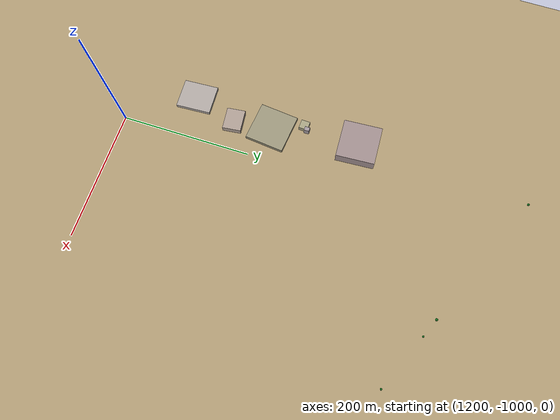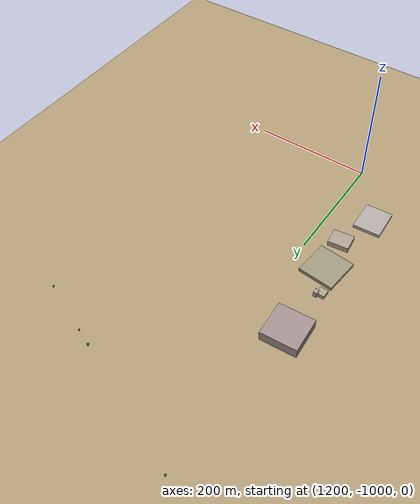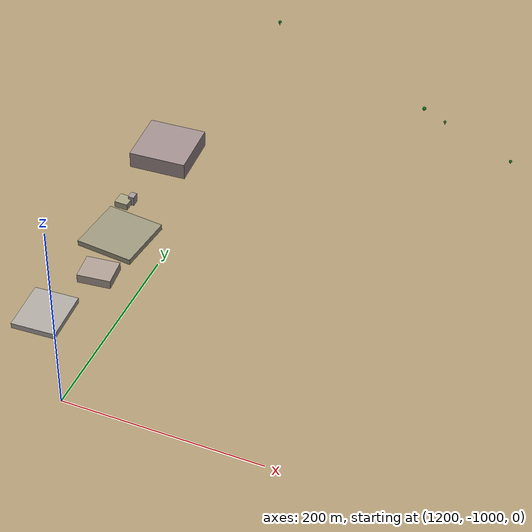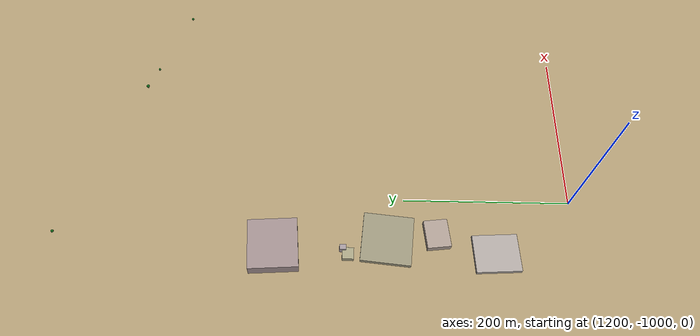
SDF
<sdf version="1.9">
 <world name="crossroad_world">
  <model name="ground_plane">
   <static>true</static>
   <pose>0 0 -0.05 0 0 0</pose>
   <link name="link">
    <collision name="collision">
     <geometry><plane><normal>0 0 1</normal><size>10000 10000</size></plane></geometry>
    </collision>
    <visual name="visual">
     <geometry><plane><normal>0 0 1</normal><size>15000 15000</size></plane></geometry>
     <material><ambient>0.68 0.60 0.45 1</ambient><diffuse>0.68 0.60 0.45 1</diffuse></material>
    </visual>
   </link>
  </model>
  <model name="tree_242">
   <static>true</static>
   <pose>1150.099 -379.705 0 0 0 0</pose>
   <link name="link">
    <visual name="trunk">
     <pose>0 0 1.429 0 0 0</pose>
     <geometry><cylinder><radius>0.125</radius><length>2.858</length></cylinder></geometry>
     <material><ambient>0.38 0.22 0.08 1</ambient><diffuse>0.38 0.22 0.08 1</diffuse></material>
    </visual>
    <visual name="canopy">
     <pose>0 0 3.961 0 0 0</pose>
     <geometry><sphere><radius>1.697</radius></sphere></geometry>
     <material><ambient>0.08 0.44 0.10 1</ambient><diffuse>0.08 0.44 0.10 1</diffuse></material>
    </visual>
    <collision name="col">
     <pose>0 0 1.429 0 0 0</pose>
     <geometry><cylinder><radius>0.125</radius><length>2.858</length></cylinder></geometry>
    </collision>
   </link>
  </model>
  <model name="tree_243">
   <static>true</static>
   <pose>1355.362 -468.014 0 0 0 0</pose>
   <link name="link">
    <visual name="trunk">
     <pose>0 0 1.652 0 0 0</pose>
     <geometry><cylinder><radius>0.145</radius><length>3.304</length></cylinder></geometry>
     <material><ambient>0.38 0.22 0.08 1</ambient><diffuse>0.38 0.22 0.08 1</diffuse></material>
    </visual>
    <visual name="canopy">
     <pose>0 0 4.579 0 0 0</pose>
     <geometry><sphere><radius>1.961</radius></sphere></geometry>
     <material><ambient>0.08 0.44 0.10 1</ambient><diffuse>0.08 0.44 0.10 1</diffuse></material>
    </visual>
    <collision name="col">
     <pose>0 0 1.652 0 0 0</pose>
     <geometry><cylinder><radius>0.145</radius><length>3.304</length></cylinder></geometry>
    </collision>
   </link>
  </model>
  <model name="tree_244">
   <static>true</static>
   <pose>1383.025 -479.852 0 0 0 0</pose>
   <link name="link">
    <visual name="trunk">
     <pose>0 0 1.204 0 0 0</pose>
     <geometry><cylinder><radius>0.105</radius><length>2.409</length></cylinder></geometry>
     <material><ambient>0.38 0.22 0.08 1</ambient><diffuse>0.38 0.22 0.08 1</diffuse></material>
    </visual>
    <visual name="canopy">
     <pose>0 0 3.338 0 0 0</pose>
     <geometry><sphere><radius>1.430</radius></sphere></geometry>
     <material><ambient>0.08 0.44 0.10 1</ambient><diffuse>0.08 0.44 0.10 1</diffuse></material>
    </visual>
    <collision name="col">
     <pose>0 0 1.204 0 0 0</pose>
     <geometry><cylinder><radius>0.105</radius><length>2.409</length></cylinder></geometry>
    </collision>
   </link>
  </model>
  <model name="tree_245">
   <static>true</static>
   <pose>1467.435 -516.276 0 0 0 0</pose>
   <link name="link">
    <visual name="trunk">
     <pose>0 0 1.291 0 0 0</pose>
     <geometry><cylinder><radius>0.113</radius><length>2.582</length></cylinder></geometry>
     <material><ambient>0.38 0.22 0.08 1</ambient><diffuse>0.38 0.22 0.08 1</diffuse></material>
    </visual>
    <visual name="canopy">
     <pose>0 0 3.579 0 0 0</pose>
     <geometry><sphere><radius>1.533</radius></sphere></geometry>
     <material><ambient>0.08 0.44 0.10 1</ambient><diffuse>0.08 0.44 0.10 1</diffuse></material>
    </visual>
    <collision name="col">
     <pose>0 0 1.291 0 0 0</pose>
     <geometry><cylinder><radius>0.113</radius><length>2.582</length></cylinder></geometry>
    </collision>
   </link>
  </model>
  <model name="building_256">
   <static>true</static>
   <pose>1129.087 -731.784 3.451 0 0 -0.027</pose>
   <link name="link">
    <visual name="body">
     <geometry><box><size>13.89 13.65 6.90</size></box></geometry>
     <material><ambient>0.65 0.63 0.51 1</ambient><diffuse>0.65 0.63 0.51 1</diffuse></material>
    </visual>
    <collision name="col"><geometry><box><size>13.89 13.65 6.90</size></box></geometry></collision>
   </link>
  </model>
  <model name="building_303">
   <static>true</static>
   <pose>1135.797 -725.683 4.976 0 0 -0.015</pose>
   <link name="link">
    <visual name="body">
     <geometry><box><size>6.25 7.73 9.95</size></box></geometry>
     <material><ambient>0.63 0.59 0.61 1</ambient><diffuse>0.63 0.59 0.61 1</diffuse></material>
    </visual>
    <collision name="col"><geometry><box><size>6.25 7.73 9.95</size></box></geometry></collision>
   </link>
  </model>
  <model name="building_422">
   <static>true</static>
   <pose>1148.015 -778.386 2.991 0 0 -0.100</pose>
   <link name="link">
    <visual name="body">
     <geometry><box><size>60.00 60.00 5.98</size></box></geometry>
     <material><ambient>0.60 0.58 0.48 1</ambient><diffuse>0.60 0.58 0.48 1</diffuse></material>
    </visual>
    <collision name="col"><geometry><box><size>60.00 60.00 5.98</size></box></geometry></collision>
   </link>
  </model>
  <model name="building_425">
   <static>true</static>
   <pose>1133.083 -906.306 2.838 0 0 0.054</pose>
   <link name="link">
    <visual name="body">
     <geometry><box><size>45.22 53.40 5.68</size></box></geometry>
     <material><ambient>0.68 0.65 0.63 1</ambient><diffuse>0.68 0.65 0.63 1</diffuse></material>
    </visual>
    <collision name="col"><geometry><box><size>45.22 53.40 5.68</size></box></geometry></collision>
   </link>
  </model>
  <model name="building_430">
   <static>true</static>
   <pose>1135.914 -643.565 8.896 0 0 0.061</pose>
   <link name="link">
    <visual name="body">
     <geometry><box><size>60.00 59.01 17.79</size></box></geometry>
     <material><ambient>0.62 0.55 0.55 1</ambient><diffuse>0.62 0.55 0.55 1</diffuse></material>
    </visual>
    <collision name="col"><geometry><box><size>60.00 59.01 17.79</size></box></geometry></collision>
   </link>
  </model>
  <model name="building_432">
   <static>true</static>
   <pose>1154.662 -837.389 4.665 0 0 0.113</pose>
   <link name="link">
    <visual name="body">
     <geometry><box><size>34.24 28.26 9.33</size></box></geometry>
     <material><ambient>0.67 0.61 0.57 1</ambient><diffuse>0.67 0.61 0.57 1</diffuse></material>
    </visual>
    <collision name="col"><geometry><box><size>34.24 28.26 9.33</size></box></geometry></collision>
   </link>
  </model>
 </world>
</sdf>
